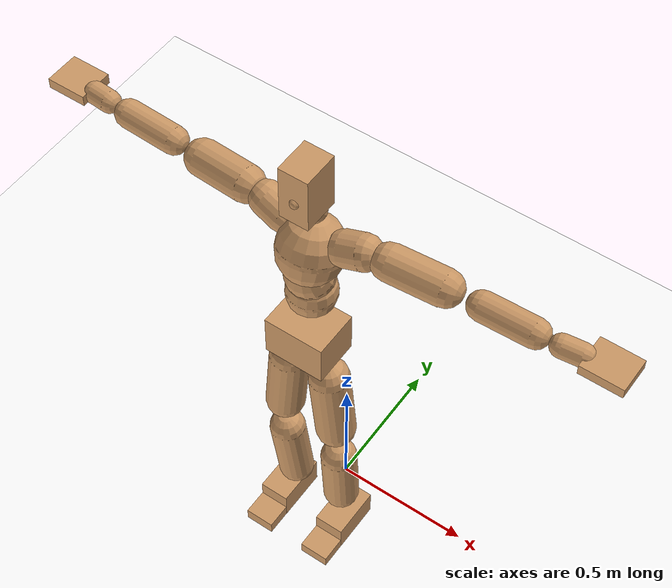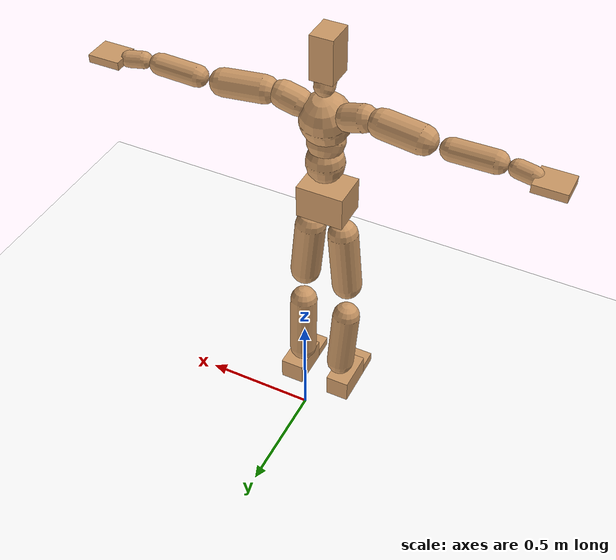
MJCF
<mujoco model="humanoid">
  <option integrator="implicitfast" />

  <visual>
    <global offwidth="1280" offheight="960" />
    <headlight active="1" ambient="0.34 0.34 0.34" diffuse="0.5 0.5 0.5" />
  </visual>

  <default>
    <joint damping="2" stiffness="2" armature="0.01" limited="true" solimplimit="0 .99 .01" />
    <geom condim="1" friction="0.7 0.005 0.0001" solimp=".99 .99 .003" solref="0.015 1" margin="0.001" rgba="0.8 0.6 .4 1" />
    <default class="smplcontact">
      <geom condim="3" friction="1. 0.005 0.0001" solref="0.015 1" solimp="0.98 0.98 0.001" priority="1" />
    </default>
    <default class="stiff_medium">
      <joint stiffness="10" />
    </default>
    <default class="stiff_medium_higher">
      <joint stiffness="50" />
    </default>
    <default class="stiff_high">
      <joint stiffness="100" />
    </default>
  </default>

  <asset>
    <texture type="skybox" builtin="gradient" rgb1="0.99 0.99 0.99" rgb2="0.608 0.828 0.892" width="100" />
    <texture builtin="flat" height="1278" mark="cross" markrgb="1 1 1" name="texgeom" random="0.01" rgb1="0.8 0.6 0.4" rgb2="0.8 0.6 0.4" type="cube" width="127" />
    <texture name="texplane" type="2d" builtin="checker" markrgb="1 1 1" rgb1="0.756 0.772 0.76" rgb2="0.6 0.6 0.6" width="100" height="100" />
    <material name="MatPlane" reflectance="0.5" texture="texplane" texrepeat="1 1" texuniform="true" />
    <material name="geom" texture="texgeom" texuniform="true" />
  </asset>

  <worldbody>
    <light name="tracking_light" pos="0 0 7" dir="0 0 -1" directional="true" cutoff="100" exponent="1" diffuse="1 1 1" specular="0.1 0.1 0.1" mode="trackcom" />
    <camera name="back" pos="0 3 2.4" xyaxes="-1 0 0 0 -1 2" mode="trackcom" />
    <camera name="side" pos="-3 0 2.4" xyaxes="0 -1 0 1 0 2" mode="trackcom" />
    <camera name="front_side" pos="-2.8 -2.8 0.8" xyaxes="0.5 -0.5 0 0.1 0.1 1" mode="trackcom" />
    <geom condim="3" name="floor" pos="0 0 0" rgba="1 1 1 1" size="100 100 .2" type="plane" material="MatPlane" />
    <body name="Pelvis" pos="-0.0018 -0.2233 1.11512" euler="90 0 0">
      <site name="Pelvis" size="0.01" />
      <freejoint name="Pelvis" />
      <geom type="box" pos="0 -0.0129408 -0.00549505" size="0.106804 0.0772171 0.0829253" quat="1.0000 0.0000 0.0000 0.0000" density="3165.830099" name="Pelvis" />
      <body name="L_Hip" pos="0.0694375 -0.0977513 -0.00679388">
        <joint name="L_Hip_x" type="hinge" pos="0 0 0" axis="1 0 0" stiffness="10" range="-160.0 22.92" class="stiff_medium" damping="15" />
        <joint name="L_Hip_y" type="hinge" pos="0 0 0" axis="0 1 0" stiffness="10" range="-70.0 70.0" class="stiff_medium" damping="10" />
        <joint name="L_Hip_z" type="hinge" pos="0 0 0" axis="0 0 1" stiffness="10" range="-28.65 90.0" class="stiff_medium" damping="10" />
        <geom type="capsule" density="2040.816327" fromto="0.00845548 -0.0919896 -0.00110379 0.0335991 -0.368202 -0.00441539" size="0.0690338" name="L_Hip" />
        <body name="L_Knee" pos="0.0420546 -0.460191 -0.00551919">
          <joint name="L_Knee_x" type="hinge" pos="0 0 0" axis="1 0 0" range="-5.16 171.89" damping="8" />
          <joint name="L_Knee_y" type="hinge" pos="0 0 0" axis="0 1 0" range="-4.58 6.88" damping="8" />
          <joint name="L_Knee_z" type="hinge" pos="0 0 0" axis="0 0 1" range="-6.88 4.58" damping="8" />
          <geom type="capsule" density="1234.567901" fromto="-0.00322761 -0.0951337 -0.0103992 -0.0130278 -0.380535 -0.0418317" size="0.0634972" name="L_Knee" />
          <body name="L_Ankle" pos="-0.0162555 -0.475669 -0.0522309">
            <joint name="L_Ankle_x" type="hinge" pos="0 0 0" axis="1 0 0" range="-45.84 45.84" class="stiff_medium" damping="6" />
            <joint name="L_Ankle_y" type="hinge" pos="0 0 0" axis="0 1 0" range="-74.48 22.92" class="stiff_medium" damping="3" />
            <joint name="L_Ankle_z" type="hinge" pos="0 0 0" axis="0 0 1" range="-4.58 4.58" class="stiff_medium" damping="6" />
            <geom type="box" pos="0.0260587 -0.0267298 0.0268621" size="0.0540187 0.0518938 0.0943503" quat="1.0000 0.0000 0.0000 0.0000" density="449.071558" name="L_Ankle" class="smplcontact" />
            <body name="L_Toe" pos="0.0295258 -0.0624067 0.132423">
              <joint name="L_Toe_x" type="hinge" pos="0 0 0" axis="1 0 0" range="-91.67 22.92" />
              <joint name="L_Toe_y" type="hinge" pos="0 0 0" axis="0 1 0" range="-4.58 4.58" />
              <joint name="L_Toe_z" type="hinge" pos="0 0 0" axis="0 0 1" range="-4.58 4.58" />
              <geom type="box" pos="-0.0033552 0.0061512 0.0275281" size="0.0534595 0.022368 0.0550562" quat="1.0000 0.0000 0.0000 0.0000" density="423.206892" name="L_Toe" class="smplcontact" />
            </body>
          </body>
        </body>
      </body>
      <body name="R_Hip" pos="-0.0676391 -0.0967887 -0.00429613">
        <joint name="R_Hip_x" type="hinge" pos="0 0 0" axis="1 0 0" stiffness="10" range="-160.0 22.92" class="stiff_medium" damping="15" />
        <joint name="R_Hip_y" type="hinge" pos="0 0 0" axis="0 1 0" stiffness="10" range="-70.0 70.0" class="stiff_medium" damping="10" />
        <joint name="R_Hip_z" type="hinge" pos="0 0 0" axis="0 0 1" stiffness="10" range="-90.0 28.65" class="stiff_medium" damping="10" />
        <geom type="capsule" density="2040.816327" fromto="-0.009437 -0.0938295 -0.00220421 -0.0375243 -0.375438 -0.00870476" size="0.0680235" name="R_Hip" />
        <body name="R_Knee" pos="-0.0469613 -0.469268 -0.010909">
          <joint name="R_Knee_x" type="hinge" pos="0 0 0" axis="1 0 0" range="-5.16 171.89" damping="8" />
          <joint name="R_Knee_y" type="hinge" pos="0 0 0" axis="0 1 0" range="-6.88 4.58" damping="8" />
          <joint name="R_Knee_z" type="hinge" pos="0 0 0" axis="0 0 1" range="-4.58 6.88" damping="8" />
          <geom type="capsule" density="1234.567901" fromto="0.00382308 -0.0952536 -0.0101574 0.0150575 -0.380894 -0.0403947" size="0.0634972" name="R_Knee" />
          <body name="R_Ankle" pos="0.0188806 -0.476148 -0.0505522">
            <joint name="R_Ankle_x" type="hinge" pos="0 0 0" axis="1 0 0" range="-45.84 45.84" class="stiff_medium" damping="6" />
            <joint name="R_Ankle_y" type="hinge" pos="0 0 0" axis="0 1 0" range="-22.92 74.48" class="stiff_medium" damping="3" />
            <joint name="R_Ankle_z" type="hinge" pos="0 0 0" axis="0 0 1" range="-4.58 4.58" class="stiff_medium" damping="6" />
            <geom type="box" pos="-0.0237101 -0.0194602 0.0284161" size="0.0540187 0.0534595 0.0960153" quat="1.0000 0.0000 0.0000 0.0000" density="434.700981" name="R_Ankle" class="smplcontact" />
            <body name="R_Toe" pos="-0.0284074 -0.053795 0.136863">
              <joint name="R_Toe_x" type="hinge" pos="0 0 0" axis="1 0 0" range="-91.67 22.92" />
              <joint name="R_Toe_y" type="hinge" pos="0 0 0" axis="0 1 0" range="-4.58 4.58" />
              <joint name="R_Toe_z" type="hinge" pos="0 0 0" axis="0 0 1" range="-4.58 4.58" />
              <geom type="box" pos="0.00469728 0.0050328 0.0251971" size="0.0535714 0.0241574 0.0547232" quat="1.0000 0.0000 0.0000 0.0000" density="407.384095" name="R_Toe" class="smplcontact" />
            </body>
          </body>
        </body>
      </body>
      <body name="Torso" pos="-0.00249775 0.116574 -0.026676">
        <joint name="Torso_x" type="hinge" pos="0 0 0" axis="1 0 0" range="-25.78 57.3" class="stiff_medium" damping="15" />
        <joint name="Torso_y" type="hinge" pos="0 0 0" axis="0 1 0" range="-57.3 57.3" class="stiff_high" damping="20" />
        <joint name="Torso_z" type="hinge" pos="0 0 0" axis="0 0 1" range="-34.38 34.38" class="stiff_high" damping="20" />
        <geom type="capsule" density="2040.816327" fromto="0.00266996 0.0647967 0.000533993 0.00320283 0.0791842 0.000640567" size="0.083698" name="Torso" />
        <body name="Spine" pos="0.00587271 0.144088 0.00117454">
          <joint name="Spine_x" type="hinge" pos="0 0 0" axis="1 0 0" stiffness="10" range="-25.78 57.3" class="stiff_medium" damping="15" />
          <joint name="Spine_y" type="hinge" pos="0 0 0" axis="0 1 0" stiffness="10" range="-57.3 57.3" class="stiff_high" damping="8" />
          <joint name="Spine_z" type="hinge" pos="0 0 0" axis="0 0 1" stiffness="20" range="-34.38 34.38" class="stiff_high" damping="12" />
          <geom type="capsule" density="2040.816327" fromto="0.000751749 0.025367 0.0121444 0.000858323 0.0310154 0.0149153" size="0.0821742" name="Spine" />
          <body name="Chest" pos="0.00161007 0.0563824 0.0270596">
            <joint name="Chest_x" type="hinge" pos="0 0 0" axis="1 0 0" stiffness="10" range="-25.78 57.3" class="stiff_medium" damping="15" />
            <joint name="Chest_y" type="hinge" pos="0 0 0" axis="0 1 0" stiffness="10" range="-57.3 57.3" class="stiff_high" damping="8" />
            <joint name="Chest_z" type="hinge" pos="0 0 0" axis="0 0 1" stiffness="20" range="-34.38 34.38" class="stiff_high" damping="12" />
            <geom type="capsule" density="2040.816327" fromto="-0.000970772 0.0726853 -0.0184296 -0.00107735 0.088778 -0.022586" size="0.109378" name="Chest" />
            <body name="Neck" pos="-0.00302036 0.228039 -0.0454208">
              <joint name="Neck_x" type="hinge" pos="0 0 0" axis="1 0 0" range="-28.65 57.3" class="stiff_medium_higher" damping="10" />
              <joint name="Neck_y" type="hinge" pos="0 0 0" axis="0 1 0" range="-40.11 40.11" class="stiff_medium_higher" damping="10" />
              <joint name="Neck_z" type="hinge" pos="0 0 0" axis="0 0 1" range="-40.11 40.11" class="stiff_medium_higher" damping="10" />
              <geom type="capsule" density="1000" fromto="0.00102504 0.0133175 0.0105509 0.00420069 0.0532691 0.0421025" size="0.0438529" name="Neck" />
              <body name="Head" pos="0.00532624 0.0665858 0.0525522">
                <joint name="Head_x" type="hinge" pos="0 0 0" axis="1 0 0" range="-28.65 57.3" class="stiff_medium_higher" damping="2" />
                <joint name="Head_y" type="hinge" pos="0 0 0" axis="0 1 0" range="-40.11 40.11" class="stiff_medium_higher" damping="2" />
                <joint name="Head_z" type="hinge" pos="0 0 0" axis="0 0 1" range="-40.11 40.11" class="stiff_medium_higher" damping="2" />
                <geom type="box" pos="-0.00351666 0.0746998 -0.00971268" size="0.0507404 0.0984059 0.0636348" quat="1.0000 0.0000 0.0000 0.0000" density="1018.069894" name="Head" />
                <geom type="capsule" name="nose" size="0.016746 0.008373" pos="0 0.0596916 0.041865" quat="1 0 0 0" mass="0" contype="0" conaffinity="0" />
              </body>
            </body>
            <body name="L_Thorax" pos="0.0860389 0.129697 -0.0364097">
              <joint name="L_Thorax_x" type="hinge" pos="0 0 0" axis="1 0 0" range="-10.89 4.58" class="stiff_medium_higher" damping="20" />
              <joint name="L_Thorax_y" type="hinge" pos="0 0 0" axis="0 1 0" range="-28.65 17.19" class="stiff_medium_higher" damping="20" />
              <joint name="L_Thorax_z" type="hinge" pos="0 0 0" axis="0 0 1" range="-31.51 40.11" class="stiff_medium_higher" damping="20" />
              <geom type="capsule" density="1000" fromto="0.0213174 0.00714485 -0.0021068 0.0852693 0.0285793 -0.00831458" size="0.058649" name="L_Thorax" />
              <body name="L_Shoulder" pos="0.106587 0.0357241 -0.0104214">
                <joint name="L_Shoulder_x" type="hinge" pos="0 0 0" axis="1 0 0" range="-97.4 97.4" class="stiff_medium" damping="6" />
                <joint name="L_Shoulder_y" type="hinge" pos="0 0 0" axis="0 1 0" range="-108.86 80.21" class="stiff_medium" damping="6" />
                <joint name="L_Shoulder_z" type="hinge" pos="0 0 0" axis="0 0 1" range="-97.4 85.94" class="stiff_medium" damping="6" />
                <geom type="capsule" density="1000" fromto="0.0587578 -0.00294469 -0.0062268 0.235145 -0.0115489 -0.0249071" size="0.059393" name="L_Shoulder" />
                <body name="L_Elbow" pos="0.293902 -0.0144936 -0.0311339">
                  <joint name="L_Elbow_x" type="hinge" pos="0 0 0" axis="1 0 0" range="-17.19 4.58" damping="5" />
                  <joint name="L_Elbow_y" type="hinge" pos="0 0 0" axis="0 1 0" range="-180.0 17.19" damping="5" />
                  <joint name="L_Elbow_z" type="hinge" pos="0 0 0" axis="0 0 1" range="-100.84 4.58" damping="5" />
                  <geom type="capsule" density="1000" fromto="0.0578606 0.00209132 -0.000232803 0.231675 0.00836536 -0.0010461" size="0.0465264" name="L_Elbow" />
                  <body name="L_Wrist" pos="0.289535 0.0104567 -0.00139379">
                    <joint name="L_Wrist_x" type="hinge" pos="0 0 0" axis="1 0 0" range="-180.0 22.92" />
                    <joint name="L_Wrist_y" type="hinge" pos="0 0 0" axis="0 1 0" range="-17.19 17.19" />
                    <joint name="L_Wrist_z" type="hinge" pos="0 0 0" axis="0 0 1" range="-22.92 22.92" />
                    <geom type="capsule" density="1000" fromto="0.0211122 -0.00201428 -0.00377004 0.0844499 -0.00817211 -0.0150803" size="0.0365318" name="L_Wrist" class="smplcontact" />
                    <body name="L_Hand" pos="0.105561 -0.0103012 -0.0187353">
                      <joint name="L_Hand_x" type="hinge" pos="0 0 0" axis="1 0 0" range="-17.19 17.19" />
                      <joint name="L_Hand_y" type="hinge" pos="0 0 0" axis="0 1 0" range="-51.57 51.57" />
                      <joint name="L_Hand_z" type="hinge" pos="0 0 0" axis="0 0 1" range="-91.67 91.67" />
                      <geom type="box" pos="0.0600932 0.0011184 -0.00648672" size="0.0713073 0.0176707 0.0601699" quat="1.0000 0.0000 0.0000 0.0000" density="400.552564" name="L_Hand" class="smplcontact" />
                    </body>
                  </body>
                </body>
              </body>
            </body>
            <body name="R_Thorax" pos="-0.0892721 0.126547 -0.0413261">
              <joint name="R_Thorax_x" type="hinge" pos="0 0 0" axis="1 0 0" range="-10.89 4.58" class="stiff_medium_higher" damping="20" />
              <joint name="R_Thorax_y" type="hinge" pos="0 0 0" axis="0 1 0" range="-17.19 28.65" class="stiff_medium_higher" damping="20" />
              <joint name="R_Thorax_z" type="hinge" pos="0 0 0" axis="0 0 1" range="-40.11 31.51" class="stiff_medium_higher" damping="20" />
              <geom type="capsule" density="1000" fromto="-0.0224884 0.00761327 -0.00210981 -0.0899541 0.0304532 -0.00855185" size="0.0575233" name="R_Thorax" />
              <body name="R_Shoulder" pos="-0.112444 0.0381795 -0.0106618">
                <joint name="R_Shoulder_x" type="hinge" pos="0 0 0" axis="1 0 0" range="-97.4 97.4" class="stiff_medium" damping="6" />
                <joint name="R_Shoulder_y" type="hinge" pos="0 0 0" axis="0 1 0" range="-80.21 108.86" class="stiff_medium" damping="6" />
                <joint name="R_Shoulder_z" type="hinge" pos="0 0 0" axis="0 0 1" range="-85.94 97.4" class="stiff_medium" damping="6" />
                <geom type="capsule" density="1000" fromto="-0.0573992 -0.00305738 -0.00486883 -0.229824 -0.0121145 -0.0193602" size="0.0610013" name="R_Shoulder" />
                <body name="R_Elbow" pos="-0.287223 -0.015057 -0.024229">
                  <joint name="R_Elbow_x" type="hinge" pos="0 0 0" axis="1 0 0" range="-17.19 4.58" damping="5" />
                  <joint name="R_Elbow_y" type="hinge" pos="0 0 0" axis="0 1 0" range="-17.19 180.0" damping="5" />
                  <joint name="R_Elbow_z" type="hinge" pos="0 0 0" axis="0 0 1" range="-4.58 100.84" damping="5" />
                  <geom type="capsule" density="1000" fromto="-0.0593711 0.00185813 -0.00127806 -0.237252 0.00720269 -0.0051122" size="0.046871" name="R_Elbow" />
                  <body name="R_Wrist" pos="-0.296623 0.00906082 -0.00650515">
                    <joint name="R_Wrist_x" type="hinge" pos="0 0 0" axis="1 0 0" range="-180.0 22.92" />
                    <joint name="R_Wrist_y" type="hinge" pos="0 0 0" axis="0 1 0" range="-17.19 17.19" />
                    <joint name="R_Wrist_z" type="hinge" pos="0 0 0" axis="0 0 1" range="-22.92 22.92" />
                    <geom type="capsule" density="1000" fromto="-0.0212385 -0.00151139 -0.00263506 -0.0850788 -0.00616118 -0.0104266" size="0.0374509" name="R_Wrist" class="smplcontact" />
                    <body name="R_Hand" pos="-0.106316 -0.00767248 -0.0129466">
                      <joint name="R_Hand_x" type="hinge" pos="0 0 0" axis="1 0 0" range="-17.19 17.19" />
                      <joint name="R_Hand_y" type="hinge" pos="0 0 0" axis="0 1 0" range="-51.57 51.57" />
                      <joint name="R_Hand_z" type="hinge" pos="0 0 0" axis="0 0 1" range="-91.67 91.67" />
                      <geom type="box" pos="-0.0563145 -0.00100656 -0.00883536" size="0.069357 0.0183418 0.0610646" quat="1.0000 0.0000 0.0000 0.0000" density="403.679611" name="R_Hand" class="smplcontact" />
                    </body>
                  </body>
                </body>
              </body>
            </body>
          </body>
        </body>
      </body>
    </body>
  </worldbody>
  <actuator>
    <general name="L_Hip_x" joint="L_Hip_x" biastype="affine" gainprm="287.33006409732246" biasprm="-215.3247604770444 -180 -2.0" ctrllimited="true" ctrlrange="-1 1" forcerange="-360 360" />
    <general name="L_Hip_y" joint="L_Hip_y" biastype="affine" gainprm="219.9114857512855" biasprm="0.0 -180 -2.0" ctrllimited="true" ctrlrange="-1 1" forcerange="-360 360" />
    <general name="L_Hip_z" joint="L_Hip_z" biastype="affine" gainprm="186.3749841742145" biasprm="96.3683546488669 -180 -2.0" ctrllimited="true" ctrlrange="-1 1" forcerange="-360 360" />
    <general name="L_Knee_x" joint="L_Knee_x" biastype="affine" gainprm="278.10948965903646" biasprm="261.8988715665131 -180 -2.0" ctrllimited="true" ctrlrange="-1 1" forcerange="-360 360" />
    <general name="L_Knee_y" joint="L_Knee_y" biastype="affine" gainprm="18.001325905069514" biasprm="3.612831551628262 -180 -2.0" ctrllimited="true" ctrlrange="-1 1" forcerange="-360 360" />
    <general name="L_Knee_z" joint="L_Knee_z" biastype="affine" gainprm="18.001325905069514" biasprm="-3.612831551628262 -180 -2.0" ctrllimited="true" ctrlrange="-1 1" forcerange="-360 360" />
    <general name="L_Ankle_x" joint="L_Ankle_x" biastype="affine" gainprm="72.00530362027807" biasprm="0.0 -90 -2.0" ctrllimited="true" ctrlrange="-1 1" forcerange="-180 180" />
    <general name="L_Ankle_y" joint="L_Ankle_y" biastype="affine" gainprm="76.49778111491148" biasprm="-40.49512930477244 -90 -2.0" ctrllimited="true" ctrlrange="-1 1" forcerange="-180 180" />
    <general name="L_Ankle_z" joint="L_Ankle_z" biastype="affine" gainprm="7.1942471767206255" biasprm="0.0 -90 -2.0" ctrllimited="true" ctrlrange="-1 1" forcerange="-180 180" />
    <general name="L_Toe_x" joint="L_Toe_x" biastype="affine" gainprm="71.99902043497087" biasprm="-43.19689898685965 -72 -0.8" ctrllimited="true" ctrlrange="-1 1" forcerange="-144 144" />
    <general name="L_Toe_y" joint="L_Toe_y" biastype="affine" gainprm="5.755397741376501" biasprm="0.0 -72 -0.8" ctrllimited="true" ctrlrange="-1 1" forcerange="-144 144" />
    <general name="L_Toe_z" joint="L_Toe_z" biastype="affine" gainprm="5.755397741376501" biasprm="0.0 -72 -0.8" ctrllimited="true" ctrlrange="-1 1" forcerange="-144 144" />
    <general name="R_Hip_x" joint="R_Hip_x" biastype="affine" gainprm="287.33006409732246" biasprm="-215.3247604770444 -180 -2.0" ctrllimited="true" ctrlrange="-1 1" forcerange="-360 360" />
    <general name="R_Hip_y" joint="R_Hip_y" biastype="affine" gainprm="219.9114857512855" biasprm="0.0 -180 -2.0" ctrllimited="true" ctrlrange="-1 1" forcerange="-360 360" />
    <general name="R_Hip_z" joint="R_Hip_z" biastype="affine" gainprm="186.3749841742145" biasprm="-96.3683546488669 -180 -2.0" ctrllimited="true" ctrlrange="-1 1" forcerange="-360 360" />
    <general name="R_Knee_x" joint="R_Knee_x" biastype="affine" gainprm="278.10948965903646" biasprm="261.8988715665131 -180 -2.0" ctrllimited="true" ctrlrange="-1 1" forcerange="-360 360" />
    <general name="R_Knee_y" joint="R_Knee_y" biastype="affine" gainprm="18.001325905069514" biasprm="-3.612831551628262 -180 -2.0" ctrllimited="true" ctrlrange="-1 1" forcerange="-360 360" />
    <general name="R_Knee_z" joint="R_Knee_z" biastype="affine" gainprm="18.001325905069514" biasprm="3.612831551628262 -180 -2.0" ctrllimited="true" ctrlrange="-1 1" forcerange="-360 360" />
    <general name="R_Ankle_x" joint="R_Ankle_x" biastype="affine" gainprm="72.00530362027807" biasprm="0.0 -90 -2.0" ctrllimited="true" ctrlrange="-1 1" forcerange="-180 180" />
    <general name="R_Ankle_y" joint="R_Ankle_y" biastype="affine" gainprm="76.49778111491148" biasprm="40.49512930477244 -90 -2.0" ctrllimited="true" ctrlrange="-1 1" forcerange="-180 180" />
    <general name="R_Ankle_z" joint="R_Ankle_z" biastype="affine" gainprm="7.1942471767206255" biasprm="0.0 -90 -2.0" ctrllimited="true" ctrlrange="-1 1" forcerange="-180 180" />
    <general name="R_Toe_x" joint="R_Toe_x" biastype="affine" gainprm="71.99902043497087" biasprm="-43.19689898685965 -72 -0.8" ctrllimited="true" ctrlrange="-1 1" forcerange="-144 144" />
    <general name="R_Toe_y" joint="R_Toe_y" biastype="affine" gainprm="5.755397741376501" biasprm="0.0 -72 -0.8" ctrllimited="true" ctrlrange="-1 1" forcerange="-144 144" />
    <general name="R_Toe_z" joint="R_Toe_z" biastype="affine" gainprm="5.755397741376501" biasprm="0.0 -72 -0.8" ctrllimited="true" ctrlrange="-1 1" forcerange="-144 144" />
    <general name="Torso_x" joint="Torso_x" biastype="affine" gainprm="174.00234510682668" biasprm="66.0153336274335 -240 -4.0" ctrllimited="true" ctrlrange="-1 1" forcerange="-360 360" />
    <general name="Torso_y" joint="Torso_y" biastype="affine" gainprm="240.0176787342602" biasprm="0.0 -240 -4.0" ctrllimited="true" ctrlrange="-1 1" forcerange="-360 360" />
    <general name="Torso_z" joint="Torso_z" biastype="affine" gainprm="144.01060724055614" biasprm="0.0 -240 -4.0" ctrllimited="true" ctrlrange="-1 1" forcerange="-360 360" />
    <general name="Spine_x" joint="Spine_x" biastype="affine" gainprm="174.00234510682668" biasprm="66.0153336274335 -240 -4.0" ctrllimited="true" ctrlrange="-1 1" forcerange="-360 360" />
    <general name="Spine_y" joint="Spine_y" biastype="affine" gainprm="240.0176787342602" biasprm="0.0 -240 -4.0" ctrllimited="true" ctrlrange="-1 1" forcerange="-360 360" />
    <general name="Spine_z" joint="Spine_z" biastype="affine" gainprm="144.01060724055614" biasprm="0.0 -240 -4.0" ctrllimited="true" ctrlrange="-1 1" forcerange="-360 360" />
    <general name="Chest_x" joint="Chest_x" biastype="affine" gainprm="174.00234510682668" biasprm="66.0153336274335 -240 -4.0" ctrllimited="true" ctrlrange="-1 1" forcerange="-360 360" />
    <general name="Chest_y" joint="Chest_y" biastype="affine" gainprm="240.0176787342602" biasprm="0.0 -240 -4.0" ctrllimited="true" ctrlrange="-1 1" forcerange="-360 360" />
    <general name="Chest_z" joint="Chest_z" biastype="affine" gainprm="144.01060724055614" biasprm="0.0 -240 -4.0" ctrllimited="true" ctrlrange="-1 1" forcerange="-360 360" />
    <general name="Neck_x" joint="Neck_x" biastype="affine" gainprm="27.00198885760427" biasprm="9.000662952534757 -36 -0.8" ctrllimited="true" ctrlrange="-1 1" forcerange="-72 72" />
    <general name="Neck_y" joint="Neck_y" biastype="affine" gainprm="25.20185626709732" biasprm="0.0 -36 -0.8" ctrllimited="true" ctrlrange="-1 1" forcerange="-72 72" />
    <general name="Neck_z" joint="Neck_z" biastype="affine" gainprm="25.20185626709732" biasprm="0.0 -36 -0.8" ctrllimited="true" ctrlrange="-1 1" forcerange="-72 72" />
    <general name="Head_x" joint="Head_x" biastype="affine" gainprm="18.001325905069514" biasprm="6.000441968356505 -24 -0.8" ctrllimited="true" ctrlrange="-1 1" forcerange="-48 48" />
    <general name="Head_y" joint="Head_y" biastype="affine" gainprm="16.801237511398213" biasprm="0.0 -24 -0.8" ctrllimited="true" ctrlrange="-1 1" forcerange="-48 48" />
    <general name="Head_z" joint="Head_z" biastype="affine" gainprm="16.801237511398213" biasprm="0.0 -24 -0.8" ctrllimited="true" ctrlrange="-1 1" forcerange="-48 48" />
    <general name="L_Thorax_x" joint="L_Thorax_x" biastype="affine" gainprm="16.200146117011364" biasprm="-6.6078165480505335 -120 -1.6" ctrllimited="true" ctrlrange="-1 1" forcerange="-240 240" />
    <general name="L_Thorax_y" joint="L_Thorax_y" biastype="affine" gainprm="48.00353574685204" biasprm="-12.00088393671301 -120 -1.6" ctrllimited="true" ctrlrange="-1 1" forcerange="-240 240" />
    <general name="L_Thorax_z" joint="L_Thorax_z" biastype="affine" gainprm="75.00028861670033" biasprm="9.00589894029074 -120 -1.6" ctrllimited="true" ctrlrange="-1 1" forcerange="-240 240" />
    <general name="L_Shoulder_x" joint="L_Shoulder_x" biastype="affine" gainprm="81.5976331892389" biasprm="0.0 -48 -1.6" ctrllimited="true" ctrlrange="-1 1" forcerange="-96 96" />
    <general name="L_Shoulder_y" joint="L_Shoulder_y" biastype="affine" gainprm="79.19745640189629" biasprm="-12.00088393671301 -48 -1.6" ctrllimited="true" ctrlrange="-1 1" forcerange="-96 96" />
    <general name="L_Shoulder_z" joint="L_Shoulder_z" biastype="affine" gainprm="76.79727961455369" biasprm="-4.800353574685214 -48 -1.6" ctrllimited="true" ctrlrange="-1 1" forcerange="-96 96" />
    <general name="L_Elbow_x" joint="L_Elbow_x" biastype="affine" gainprm="13.67849441372996" biasprm="-7.923096672353461 -72 -0.8" ctrllimited="true" ctrlrange="-1 1" forcerange="-144 144" />
    <general name="L_Elbow_y" joint="L_Elbow_y" biastype="affine" gainprm="123.89813107227425" biasprm="-102.29653998619085 -72 -0.8" ctrllimited="true" ctrlrange="-1 1" forcerange="-144 144" />
    <general name="L_Elbow_z" joint="L_Elbow_z" biastype="affine" gainprm="66.23733950828719" biasprm="-60.4819417669107 -72 -0.8" ctrllimited="true" ctrlrange="-1 1" forcerange="-144 144" />
    <general name="L_Wrist_x" joint="L_Wrist_x" biastype="affine" gainprm="21.24973270888136" biasprm="-16.449379134196157 -12 -0.8" ctrllimited="true" ctrlrange="-1 1" forcerange="-24 24" />
    <general name="L_Wrist_y" joint="L_Wrist_y" biastype="affine" gainprm="3.6002651810139037" biasprm="0.0 -12 -0.8" ctrllimited="true" ctrlrange="-1 1" forcerange="-24 24" />
    <general name="L_Wrist_z" joint="L_Wrist_z" biastype="affine" gainprm="4.800353574685205" biasprm="0.0 -12 -0.8" ctrllimited="true" ctrlrange="-1 1" forcerange="-24 24" />
    <general name="L_Hand_x" joint="L_Hand_x" biastype="affine" gainprm="3.6002651810139037" biasprm="0.0 -12 -0.8" ctrllimited="true" ctrlrange="-1 1" forcerange="-24 24" />
    <general name="L_Hand_y" joint="L_Hand_y" biastype="affine" gainprm="10.800795543041708" biasprm="0.0 -12 -0.8" ctrllimited="true" ctrlrange="-1 1" forcerange="-24 24" />
    <general name="L_Hand_z" joint="L_Hand_z" biastype="affine" gainprm="19.199319903638422" biasprm="0.0 -12 -0.8" ctrllimited="true" ctrlrange="-1 1" forcerange="-24 24" />
    <general name="R_Thorax_x" joint="R_Thorax_x" biastype="affine" gainprm="16.200146117011364" biasprm="-6.6078165480505335 -120 -1.6" ctrllimited="true" ctrlrange="-1 1" forcerange="-240 240" />
    <general name="R_Thorax_y" joint="R_Thorax_y" biastype="affine" gainprm="48.00353574685204" biasprm="12.000883936713002 -120 -1.6" ctrllimited="true" ctrlrange="-1 1" forcerange="-240 240" />
    <general name="R_Thorax_z" joint="R_Thorax_z" biastype="affine" gainprm="75.00028861670033" biasprm="-9.00589894029074 -120 -1.6" ctrllimited="true" ctrlrange="-1 1" forcerange="-240 240" />
    <general name="R_Shoulder_x" joint="R_Shoulder_x" biastype="affine" gainprm="81.5976331892389" biasprm="0.0 -48 -1.6" ctrllimited="true" ctrlrange="-1 1" forcerange="-96 96" />
    <general name="R_Shoulder_y" joint="R_Shoulder_y" biastype="affine" gainprm="79.19745640189629" biasprm="12.00088393671301 -48 -1.6" ctrllimited="true" ctrlrange="-1 1" forcerange="-96 96" />
    <general name="R_Shoulder_z" joint="R_Shoulder_z" biastype="affine" gainprm="76.79727961455369" biasprm="4.800353574685204 -48 -1.6" ctrllimited="true" ctrlrange="-1 1" forcerange="-96 96" />
    <general name="R_Elbow_x" joint="R_Elbow_x" biastype="affine" gainprm="13.67849441372996" biasprm="-7.923096672353461 -72 -0.8" ctrllimited="true" ctrlrange="-1 1" forcerange="-144 144" />
    <general name="R_Elbow_y" joint="R_Elbow_y" biastype="affine" gainprm="123.89813107227425" biasprm="102.29653998619085 -72 -0.8" ctrllimited="true" ctrlrange="-1 1" forcerange="-144 144" />
    <general name="R_Elbow_z" joint="R_Elbow_z" biastype="affine" gainprm="66.23733950828719" biasprm="60.481941766910694 -72 -0.8" ctrllimited="true" ctrlrange="-1 1" forcerange="-144 144" />
    <general name="R_Wrist_x" joint="R_Wrist_x" biastype="affine" gainprm="21.24973270888136" biasprm="-16.449379134196157 -12 -0.8" ctrllimited="true" ctrlrange="-1 1" forcerange="-24 24" />
    <general name="R_Wrist_y" joint="R_Wrist_y" biastype="affine" gainprm="3.6002651810139037" biasprm="0.0 -12 -0.8" ctrllimited="true" ctrlrange="-1 1" forcerange="-24 24" />
    <general name="R_Wrist_z" joint="R_Wrist_z" biastype="affine" gainprm="4.800353574685205" biasprm="0.0 -12 -0.8" ctrllimited="true" ctrlrange="-1 1" forcerange="-24 24" />
    <general name="R_Hand_x" joint="R_Hand_x" biastype="affine" gainprm="3.6002651810139037" biasprm="0.0 -12 -0.8" ctrllimited="true" ctrlrange="-1 1" forcerange="-24 24" />
    <general name="R_Hand_y" joint="R_Hand_y" biastype="affine" gainprm="10.800795543041708" biasprm="0.0 -12 -0.8" ctrllimited="true" ctrlrange="-1 1" forcerange="-24 24" />
    <general name="R_Hand_z" joint="R_Hand_z" biastype="affine" gainprm="19.199319903638422" biasprm="0.0 -12 -0.8" ctrllimited="true" ctrlrange="-1 1" forcerange="-24 24" />
  </actuator>
  <contact>
    <exclude body1="Torso" body2="Chest" />
    <exclude body1="Head" body2="Chest" />
    <exclude body1="R_Knee" body2="R_Toe" />
    <exclude body1="R_Knee" body2="L_Ankle" />
    <exclude body1="R_Knee" body2="L_Toe" />
    <exclude body1="L_Knee" body2="L_Toe" />
    <exclude body1="L_Knee" body2="R_Ankle" />
    <exclude body1="L_Knee" body2="R_Toe" />
    <exclude body1="L_Shoulder" body2="Chest" />
    <exclude body1="R_Shoulder" body2="Chest" />
  </contact>
  <sensor>
    <framelinvel name="sensor_Pelvis_framelinvel" objtype="xbody" objname="Pelvis" />
    <framelinvel name="sensor_L_Hip_framelinvel" objtype="xbody" objname="L_Hip" />
    <framelinvel name="sensor_L_Knee_framelinvel" objtype="xbody" objname="L_Knee" />
    <framelinvel name="sensor_L_Ankle_framelinvel" objtype="xbody" objname="L_Ankle" />
    <framelinvel name="sensor_L_Toe_framelinvel" objtype="xbody" objname="L_Toe" />
    <framelinvel name="sensor_R_Hip_framelinvel" objtype="xbody" objname="R_Hip" />
    <framelinvel name="sensor_R_Knee_framelinvel" objtype="xbody" objname="R_Knee" />
    <framelinvel name="sensor_R_Ankle_framelinvel" objtype="xbody" objname="R_Ankle" />
    <framelinvel name="sensor_R_Toe_framelinvel" objtype="xbody" objname="R_Toe" />
    <framelinvel name="sensor_Torso_framelinvel" objtype="xbody" objname="Torso" />
    <framelinvel name="sensor_Spine_framelinvel" objtype="xbody" objname="Spine" />
    <framelinvel name="sensor_Chest_framelinvel" objtype="xbody" objname="Chest" />
    <framelinvel name="sensor_Neck_framelinvel" objtype="xbody" objname="Neck" />
    <framelinvel name="sensor_Head_framelinvel" objtype="xbody" objname="Head" />
    <framelinvel name="sensor_L_Thorax_framelinvel" objtype="xbody" objname="L_Thorax" />
    <framelinvel name="sensor_L_Shoulder_framelinvel" objtype="xbody" objname="L_Shoulder" />
    <framelinvel name="sensor_L_Elbow_framelinvel" objtype="xbody" objname="L_Elbow" />
    <framelinvel name="sensor_L_Wrist_framelinvel" objtype="xbody" objname="L_Wrist" />
    <framelinvel name="sensor_L_Hand_framelinvel" objtype="xbody" objname="L_Hand" />
    <framelinvel name="sensor_R_Thorax_framelinvel" objtype="xbody" objname="R_Thorax" />
    <framelinvel name="sensor_R_Shoulder_framelinvel" objtype="xbody" objname="R_Shoulder" />
    <framelinvel name="sensor_R_Elbow_framelinvel" objtype="xbody" objname="R_Elbow" />
    <framelinvel name="sensor_R_Wrist_framelinvel" objtype="xbody" objname="R_Wrist" />
    <framelinvel name="sensor_R_Hand_framelinvel" objtype="xbody" objname="R_Hand" />
    <frameangvel name="sensor_Pelvis_frameangvel" objtype="xbody" objname="Pelvis" />
    <frameangvel name="sensor_L_Hip_frameangvel" objtype="xbody" objname="L_Hip" />
    <frameangvel name="sensor_L_Knee_frameangvel" objtype="xbody" objname="L_Knee" />
    <frameangvel name="sensor_L_Ankle_frameangvel" objtype="xbody" objname="L_Ankle" />
    <frameangvel name="sensor_L_Toe_frameangvel" objtype="xbody" objname="L_Toe" />
    <frameangvel name="sensor_R_Hip_frameangvel" objtype="xbody" objname="R_Hip" />
    <frameangvel name="sensor_R_Knee_frameangvel" objtype="xbody" objname="R_Knee" />
    <frameangvel name="sensor_R_Ankle_frameangvel" objtype="xbody" objname="R_Ankle" />
    <frameangvel name="sensor_R_Toe_frameangvel" objtype="xbody" objname="R_Toe" />
    <frameangvel name="sensor_Torso_frameangvel" objtype="xbody" objname="Torso" />
    <frameangvel name="sensor_Spine_frameangvel" objtype="xbody" objname="Spine" />
    <frameangvel name="sensor_Chest_frameangvel" objtype="xbody" objname="Chest" />
    <frameangvel name="sensor_Neck_frameangvel" objtype="xbody" objname="Neck" />
    <frameangvel name="sensor_Head_frameangvel" objtype="xbody" objname="Head" />
    <frameangvel name="sensor_L_Thorax_frameangvel" objtype="xbody" objname="L_Thorax" />
    <frameangvel name="sensor_L_Shoulder_frameangvel" objtype="xbody" objname="L_Shoulder" />
    <frameangvel name="sensor_L_Elbow_frameangvel" objtype="xbody" objname="L_Elbow" />
    <frameangvel name="sensor_L_Wrist_frameangvel" objtype="xbody" objname="L_Wrist" />
    <frameangvel name="sensor_L_Hand_frameangvel" objtype="xbody" objname="L_Hand" />
    <frameangvel name="sensor_R_Thorax_frameangvel" objtype="xbody" objname="R_Thorax" />
    <frameangvel name="sensor_R_Shoulder_frameangvel" objtype="xbody" objname="R_Shoulder" />
    <frameangvel name="sensor_R_Elbow_frameangvel" objtype="xbody" objname="R_Elbow" />
    <frameangvel name="sensor_R_Wrist_frameangvel" objtype="xbody" objname="R_Wrist" />
    <frameangvel name="sensor_R_Hand_frameangvel" objtype="xbody" objname="R_Hand" />
    <subtreelinvel name="Chest_subtreelinvel" body="Chest" />
    <gyro name="Pelvis_gyro" site="Pelvis" />
  </sensor>
</mujoco>
